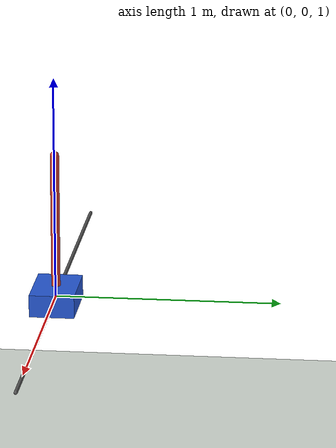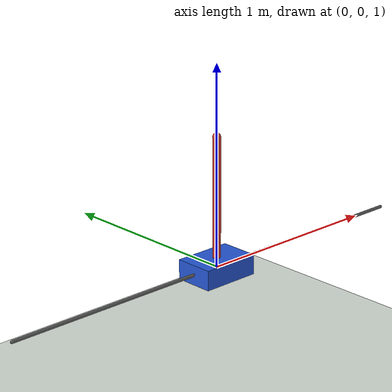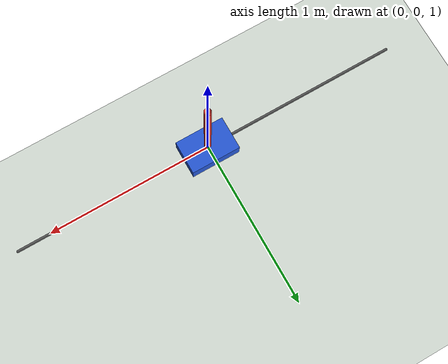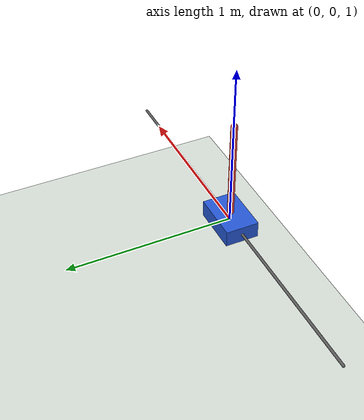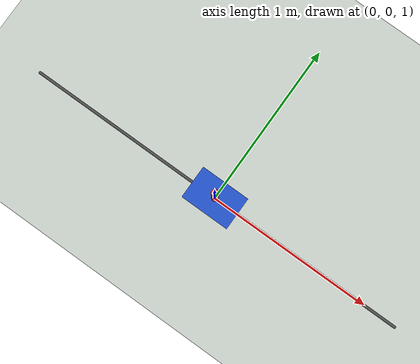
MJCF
<mujoco model="cartpole_dynamics">

  <option timestep="0.002" gravity="0 0 -9.81">
    <!-- Bật tính năng lượng cơ học -> data.energy. Không bắt buộc cho mô
         phỏng, nhưng script sinh hình cho slide cần nó. -->
    <flag energy="enable"/>
  </option>

  <visual>
    <map znear="0.01" zfar="10"/>
    <global offwidth="1280" offheight="720"/>
    <!-- Nền sáng: hình render ra dùng thẳng cho slide, nền đen mặc định
         của MuJoCo chìm nghỉm trên nền trắng của slide. -->
    <rgba haze="0.9 0.93 0.96 1"/>
    <headlight ambient="0.5 0.5 0.5" diffuse="0.5 0.5 0.5"
               specular="0.1 0.1 0.1"/>
  </visual>

  <asset>
    <texture name="sky" type="skybox" builtin="gradient"
             rgb1="0.72 0.80 0.90" rgb2="0.95 0.96 0.98" width="256" height="256"/>
  </asset>

  <default>
    <geom rgba="0.7 0.7 0.75 1"/>
  </default>

  <worldbody>
    <light pos="0 -2 3" dir="0 1 -1" directional="true" castshadow="true"/>
    <camera name="cam_side" pos="0 -3.2 1.1" quat="0.7071 0.7071 0 0"/>

    <geom name="floor" type="plane" size="3 3 0.1" rgba="0.85 0.88 0.85 1"/>

    <!-- Thanh ray chỉ để NHÌN: contype/conaffinity = 0 nên không va chạm. -->
    <geom name="rail" type="capsule" fromto="-1.2 0 1.0  1.2 0 1.0" size="0.008"
          rgba="0.35 0.35 0.35 1" contype="0" conaffinity="0"/>

    <body name="cart" pos="0 0 1.0">
      <joint name="cart_slide" type="slide" axis="1 0 0"
             limited="true" range="-1 1" damping="0.05"/>

      <geom name="cart_geom" type="box" size="0.15 0.1 0.05" mass="1.0"
            rgba="0.15 0.35 0.85 1"/>

      <body name="pole" pos="0 0 0.05">
        <joint name="pole_hinge" type="hinge" axis="0 1 0" damping="0.01"/>

        <!-- Thanh pole: capsule dài 0.6 m, gốc quay ở đầu dưới.
             mass khai báo ở đây -> MuJoCo TỰ tính inertia từ hình học. -->
        <geom name="pole_geom" type="capsule" fromto="0 0 0  0 0 0.6" size="0.02"
              mass="0.1" rgba="0.85 0.25 0.2 1" contype="0" conaffinity="0"/>
      </body>
    </body>
  </worldbody>

  <actuator>
    <motor name="cart_motor" joint="cart_slide" gear="1"
           ctrllimited="true" ctrlrange="-10 10"/>
  </actuator>

  <!-- Sensor: cách đọc state có TÊN, không phải đoán index. -->
  <sensor>
    <jointpos joint="cart_slide" name="cart_pos"/>
    <jointvel joint="cart_slide" name="cart_vel"/>
    <jointpos joint="pole_hinge" name="pole_angle"/>
    <jointvel joint="pole_hinge" name="pole_angvel"/>
  </sensor>

  <!-- Keyframe: pole lệch 0.2 rad khỏi phương thẳng đứng để nó tự đổ,
       thay vì đứng cân bằng không bền một cách giả tạo tại qpos = 0. -->
  <keyframe>
    <key name="tilted" qpos="0 0.2" qvel="0 0" ctrl="0"/>
  </keyframe>

</mujoco>
